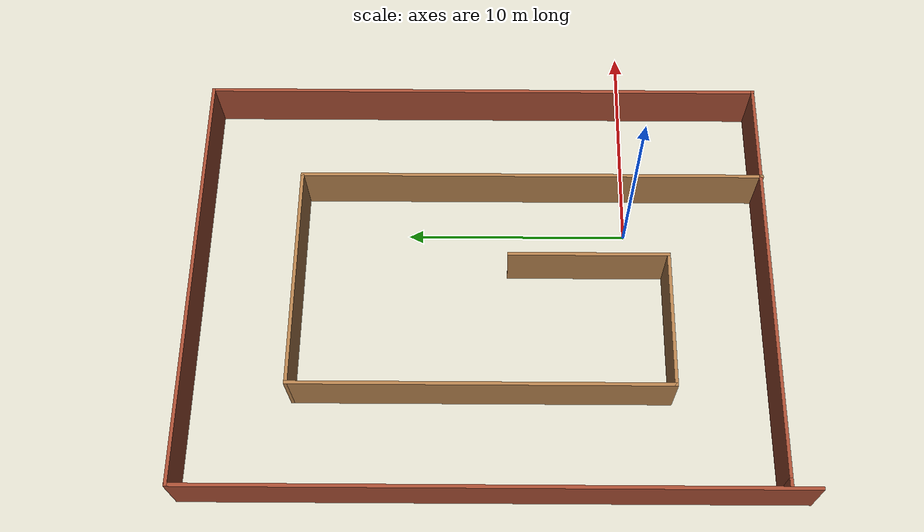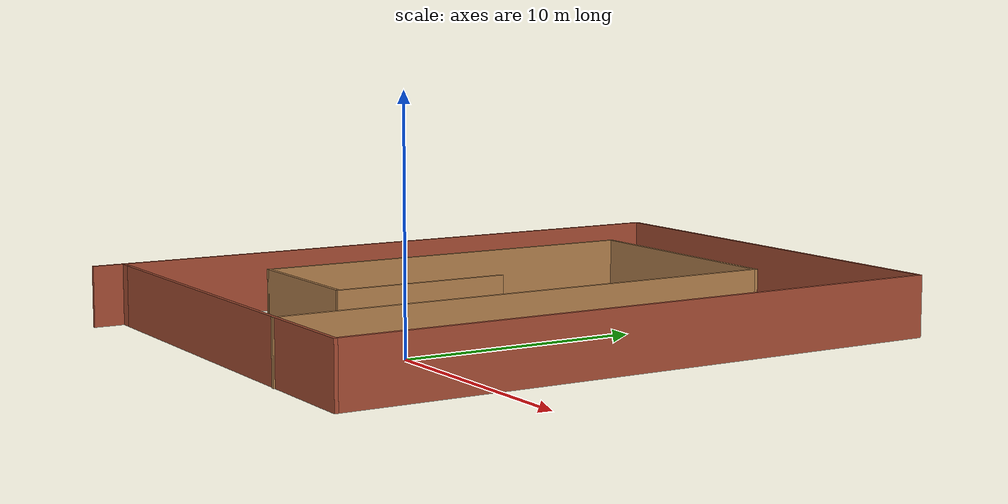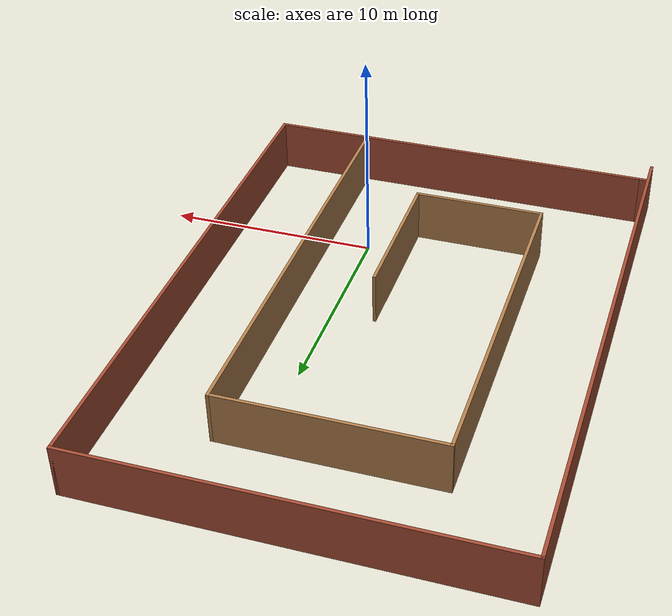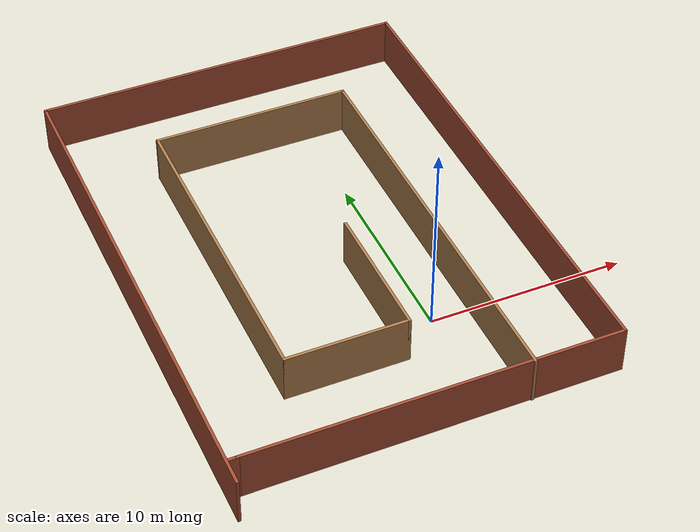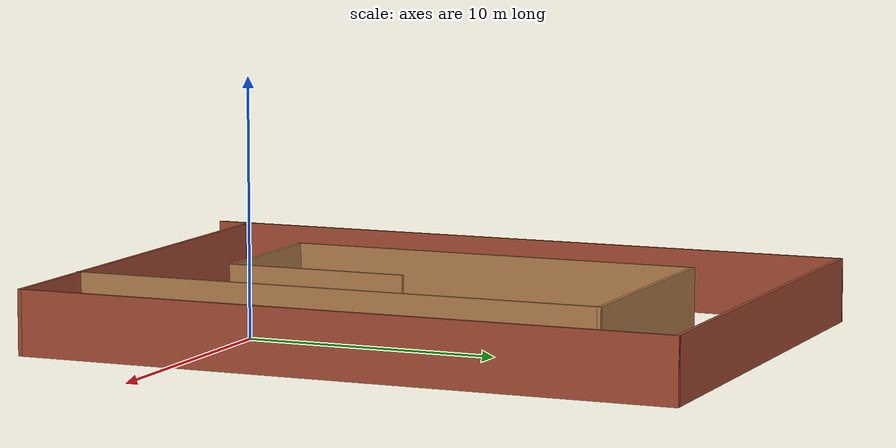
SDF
<?xml version='1.0'?>
<sdf version='1.6'>
  <model name='random_maze'>
    <pose frame=''>-3.00481 5.99068 0 0 -0 0</pose>
    <link name='Wall_12'>
      <collision name='Wall_12_Collision'>
        <geometry>
          <box>
            <size>27 0.15 2.5</size>
          </box>
        </geometry>
        <pose frame=''>0 0 1.25 0 -0 0</pose>
      </collision>
      <visual name='Wall_12_Visual'>
        <pose frame=''>0 0 1.25 0 -0 0</pose>
        <geometry>
          <box>
            <size>27 0.15 2.5</size>
          </box>
        </geometry>
        <material>
          <script>
            <uri>file://media/materials/scripts/gazebo.material</uri>
            <name>Gazebo/Bricks</name>
          </script>
          <ambient>1 1 1 1</ambient>
        </material>
        <meta>
          <layer>0</layer>
        </meta>
      </visual>
      <pose frame=''>-9.55 -0 0 0 -0 1.5708</pose>
    </link>
    <link name='Wall_13'>
      <collision name='Wall_13_Collision'>
        <geometry>
          <box>
            <size>19.25 0.15 2.5</size>
          </box>
        </geometry>
        <pose frame=''>0 0 1.25 0 -0 0</pose>
      </collision>
      <visual name='Wall_13_Visual'>
        <pose frame=''>0 0 1.25 0 -0 0</pose>
        <geometry>
          <box>
            <size>19.25 0.15 2.5</size>
          </box>
        </geometry>
        <material>
          <script>
            <uri>file://media/materials/scripts/gazebo.material</uri>
            <name>Gazebo/Bricks</name>
          </script>
          <ambient>1 1 1 1</ambient>
        </material>
        <meta>
          <layer>0</layer>
        </meta>
      </visual>
      <pose frame=''>0 13.425 0 0 -0 0</pose>
    </link>
    <link name='Wall_14'>
      <collision name='Wall_14_Collision'>
        <geometry>
          <box>
            <size>25.75 0.15 2.5</size>
          </box>
        </geometry>
        <pose frame=''>0 0 1.25 0 -0 0</pose>
      </collision>
      <visual name='Wall_14_Visual'>
        <pose frame=''>0 0 1.25 0 -0 0</pose>
        <geometry>
          <box>
            <size>25.75 0.15 2.5</size>
          </box>
        </geometry>
        <material>
          <script>
            <uri>file://media/materials/scripts/gazebo.material</uri>
            <name>Gazebo/Bricks</name>
          </script>
          <ambient>1 1 1 1</ambient>
        </material>
        <meta>
          <layer>0</layer>
        </meta>
      </visual>
      <pose frame=''>9.55 0.625 0 0 -0 -1.5708</pose>
    </link>
    <link name='Wall_15'>
      <collision name='Wall_15_Collision'>
        <geometry>
          <box>
            <size>18.75 0.15 2.5</size>
          </box>
        </geometry>
        <pose frame=''>0 0 1.25 0 -0 0</pose>
      </collision>
      <visual name='Wall_15_Visual'>
        <pose frame=''>0 0 1.25 0 -0 0</pose>
        <geometry>
          <box>
            <size>18.75 0.15 2.5</size>
          </box>
        </geometry>
        <material>
          <script>
            <uri>file://media/materials/scripts/gazebo.material</uri>
            <name>Gazebo/Bricks</name>
          </script>
          <ambient>1 1 1 1</ambient>
        </material>
        <meta>
          <layer>0</layer>
        </meta>
      </visual>
      <pose frame=''>0.25 -12.175 0 0 -0 3.14159</pose>
    </link>
    <link name='Wall_17'>
      <collision name='Wall_17_Collision'>
        <geometry>
          <box>
            <size>21.25 0.15 2.5</size>
          </box>
        </geometry>
        <pose frame=''>0 0 1.25 0 -0 0</pose>
      </collision>
      <visual name='Wall_17_Visual'>
        <pose frame=''>0 0 1.25 0 -0 0</pose>
        <geometry>
          <box>
            <size>21.25 0.15 2.5</size>
          </box>
        </geometry>
        <material>
          <script>
            <uri>file://media/materials/scripts/gazebo.material</uri>
            <name>Gazebo/Wood</name>
          </script>
          <ambient>1 1 1 1</ambient>
        </material>
        <meta>
          <layer>0</layer>
        </meta>
      </visual>
      <pose frame=''>4.986 -1.679 0 0 -0 1.5708</pose>
    </link>
    <link name='Wall_18'>
      <collision name='Wall_18_Collision'>
        <geometry>
          <box>
            <size>10.25 0.15 2.5</size>
          </box>
        </geometry>
        <pose frame=''>0 0 1.25 0 -0 0</pose>
      </collision>
      <visual name='Wall_18_Visual'>
        <pose frame=''>0 0 1.25 0 -0 0</pose>
        <geometry>
          <box>
            <size>10.25 0.15 2.5</size>
          </box>
        </geometry>
        <material>
          <script>
            <uri>file://media/materials/scripts/gazebo.material</uri>
            <name>Gazebo/Wood</name>
          </script>
          <ambient>1 1 1 1</ambient>
        </material>
        <meta>
          <layer>0</layer>
        </meta>
      </visual>
      <pose frame=''>-0.064 8.871 0 0 -0 3.14159</pose>
    </link>
    <link name='Wall_19'>
      <collision name='Wall_19_Collision'>
        <geometry>
          <box>
            <size>16.75 0.15 2.5</size>
          </box>
        </geometry>
        <pose frame=''>0 0 1.25 0 -0 0</pose>
      </collision>
      <visual name='Wall_19_Visual'>
        <pose frame=''>0 0 1.25 0 -0 0</pose>
        <geometry>
          <box>
            <size>16.75 0.15 2.5</size>
          </box>
        </geometry>
        <material>
          <script>
            <uri>file://media/materials/scripts/gazebo.material</uri>
            <name>Gazebo/Wood</name>
          </script>
          <ambient>1 1 1 1</ambient>
        </material>
        <meta>
          <layer>0</layer>
        </meta>
      </visual>
      <pose frame=''>-5.114 0.570999 0 0 -0 -1.5708</pose>
    </link>
    <link name='Wall_20'>
      <collision name='Wall_20_Collision'>
        <geometry>
          <box>
            <size>6.25 0.15 2.5</size>
          </box>
        </geometry>
        <pose frame=''>0 0 1.25 0 -0 0</pose>
      </collision>
      <visual name='Wall_20_Visual'>
        <pose frame=''>0 0 1.25 0 -0 0</pose>
        <geometry>
          <box>
            <size>6.25 0.15 2.5</size>
          </box>
        </geometry>
        <material>
          <script>
            <uri>file://media/materials/scripts/gazebo.material</uri>
            <name>Gazebo/Wood</name>
          </script>
          <ambient>1 1 1 1</ambient>
        </material>
        <meta>
          <layer>0</layer>
        </meta>
      </visual>
      <pose frame=''>-2.064 -7.729 0 0 -0 0</pose>
    </link>
    <link name='Wall_21'>
      <collision name='Wall_21_Collision'>
        <geometry>
          <box>
            <size>7.25 0.15 2.5</size>
          </box>
        </geometry>
        <pose frame=''>0 0 1.25 0 -0 0</pose>
      </collision>
      <visual name='Wall_21_Visual'>
        <pose frame=''>0 0 1.25 0 -0 0</pose>
        <geometry>
          <box>
            <size>7.25 0.15 2.5</size>
          </box>
        </geometry>
        <material>
          <script>
            <uri>file://media/materials/scripts/gazebo.material</uri>
            <name>Gazebo/Wood</name>
          </script>
          <ambient>1 1 1 1</ambient>
        </material>
        <meta>
          <layer>0</layer>
        </meta>
      </visual>
      <pose frame=''>0.986 -4.179 0 0 -0 1.5708</pose>
    </link>
    <link name='Wall_23'>
      <collision name='Wall_23_Collision'>
        <geometry>
          <box>
            <size>0.5 0.15 2.5</size>
          </box>
        </geometry>
        <pose frame=''>0 0 1.25 0 -0 0</pose>
      </collision>
      <visual name='Wall_23_Visual'>
        <pose frame=''>0 0 1.25 0 -0 0</pose>
        <geometry>
          <box>
            <size>0.5 0.15 2.5</size>
          </box>
        </geometry>
        <material>
          <script>
            <uri>file://media/materials/scripts/gazebo.material</uri>
            <name>Gazebo/Bricks</name>
          </script>
          <ambient>1 1 1 1</ambient>
        </material>
        <meta>
          <layer>0</layer>
        </meta>
      </visual>
      <pose frame=''>-9.225 -12.175 0 0 -0 3.14159</pose>
    </link>
    <static>1</static>
  </model>
</sdf>
